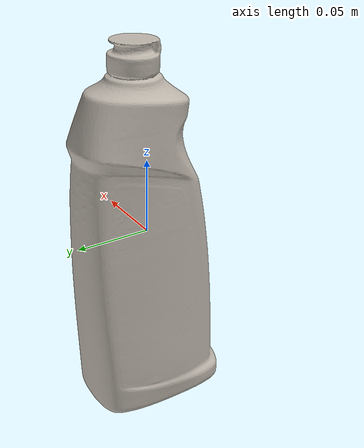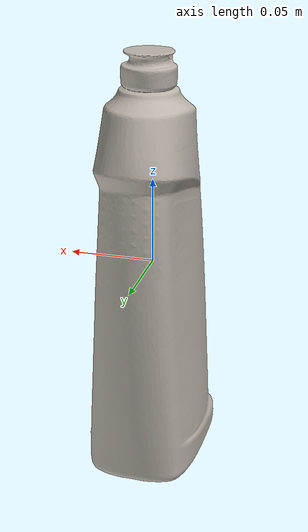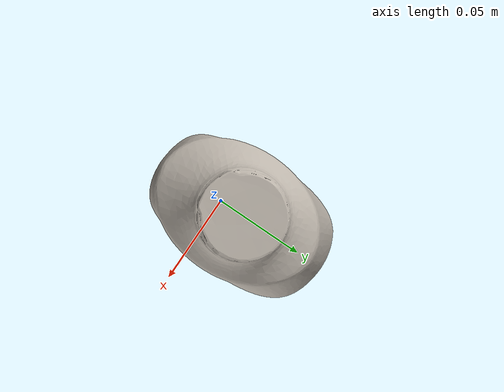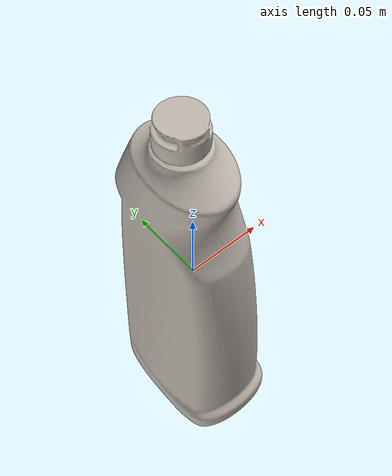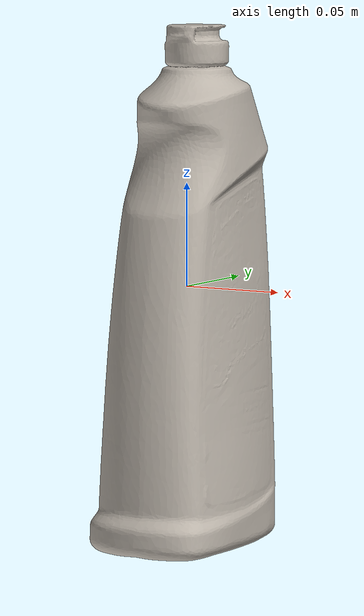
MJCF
<?xml version='1.0' encoding='utf-8'?>
<mujoco model="textured">
  <default>
    <default class="visual">
      <geom group="2" type="mesh" contype="0" conaffinity="0" />
    </default>
    <default class="collision">
      <geom group="3" type="mesh" />
    </default>
  </default>
  <asset>
    <texture type="2d" name="soft_scrub" file="texture_map.png" />
    <material name="soft_scrub" texture="soft_scrub" specular="1.0" shininess="0.0" />
    <mesh file="textured.obj" name="soft_scrub" />
    <mesh file="textured_collision_0.obj" name="soft_scrub_0" />
    <mesh file="textured_collision_1.obj" name="soft_scrub_1" />
    <mesh file="textured_collision_2.obj" name="soft_scrub_2" />
    <mesh file="textured_collision_3.obj" name="soft_scrub_3" />
    <mesh file="textured_collision_4.obj" name="soft_scrub_4" />
    <mesh file="textured_collision_5.obj" name="soft_scrub_5" />
    <mesh file="textured_collision_6.obj" name="soft_scrub_6" />
    <mesh file="textured_collision_7.obj" name="soft_scrub_7" />
    <mesh file="textured_collision_8.obj" name="soft_scrub_8" />
    <mesh file="textured_collision_9.obj" name="soft_scrub_9" />
    <mesh file="textured_collision_10.obj" name="soft_scrub_10" />
    <mesh file="textured_collision_11.obj" name="soft_scrub_11" />
    <mesh file="textured_collision_12.obj" name="soft_scrub_12" />
    <mesh file="textured_collision_13.obj" name="soft_scrub_13" />
    <mesh file="textured_collision_14.obj" name="soft_scrub_14" />
    <mesh file="textured_collision_15.obj" name="soft_scrub_15" />
    <mesh file="textured_collision_16.obj" name="soft_scrub_16" />
    <mesh file="textured_collision_17.obj" name="soft_scrub_17" />
    <mesh file="textured_collision_18.obj" name="soft_scrub_18" />
    <mesh file="textured_collision_19.obj" name="soft_scrub_19" />
    <mesh file="textured_collision_20.obj" name="soft_scrub_20" />
    <mesh file="textured_collision_21.obj" name="soft_scrub_21" />
    <mesh file="textured_collision_22.obj" name="soft_scrub_22" />
    <mesh file="textured_collision_23.obj" name="soft_scrub_23" />
    <mesh file="textured_collision_24.obj" name="soft_scrub_24" />
    <mesh file="textured_collision_25.obj" name="soft_scrub_25" />
    <mesh file="textured_collision_26.obj" name="soft_scrub_26" />
    <mesh file="textured_collision_27.obj" name="soft_scrub_27" />
    <mesh file="textured_collision_28.obj" name="soft_scrub_28" />
    <mesh file="textured_collision_29.obj" name="soft_scrub_29" />
    <mesh file="textured_collision_30.obj" name="soft_scrub_30" />
    <mesh file="textured_collision_31.obj" name="soft_scrub_31" />
  </asset>
  <worldbody>
    <body name="soft_scrub">
      <geom material="soft_scrub" mesh="soft_scrub" class="visual" />
      <geom mesh="soft_scrub_0" class="collision" />
      <geom mesh="soft_scrub_1" class="collision" />
      <geom mesh="soft_scrub_2" class="collision" />
      <geom mesh="soft_scrub_3" class="collision" />
      <geom mesh="soft_scrub_4" class="collision" />
      <geom mesh="soft_scrub_5" class="collision" />
      <geom mesh="soft_scrub_6" class="collision" />
      <geom mesh="soft_scrub_7" class="collision" />
      <geom mesh="soft_scrub_8" class="collision" />
      <geom mesh="soft_scrub_9" class="collision" />
      <geom mesh="soft_scrub_10" class="collision" />
      <geom mesh="soft_scrub_11" class="collision" />
      <geom mesh="soft_scrub_12" class="collision" />
      <geom mesh="soft_scrub_13" class="collision" />
      <geom mesh="soft_scrub_14" class="collision" />
      <geom mesh="soft_scrub_15" class="collision" />
      <geom mesh="soft_scrub_16" class="collision" />
      <geom mesh="soft_scrub_17" class="collision" />
      <geom mesh="soft_scrub_18" class="collision" />
      <geom mesh="soft_scrub_19" class="collision" />
      <geom mesh="soft_scrub_20" class="collision" />
      <geom mesh="soft_scrub_21" class="collision" />
      <geom mesh="soft_scrub_22" class="collision" />
      <geom mesh="soft_scrub_23" class="collision" />
      <geom mesh="soft_scrub_24" class="collision" />
      <geom mesh="soft_scrub_25" class="collision" />
      <geom mesh="soft_scrub_26" class="collision" />
      <geom mesh="soft_scrub_27" class="collision" />
      <geom mesh="soft_scrub_28" class="collision" />
      <geom mesh="soft_scrub_29" class="collision" />
      <geom mesh="soft_scrub_30" class="collision" />
      <geom mesh="soft_scrub_31" class="collision" />
    </body>
  </worldbody>
</mujoco>
